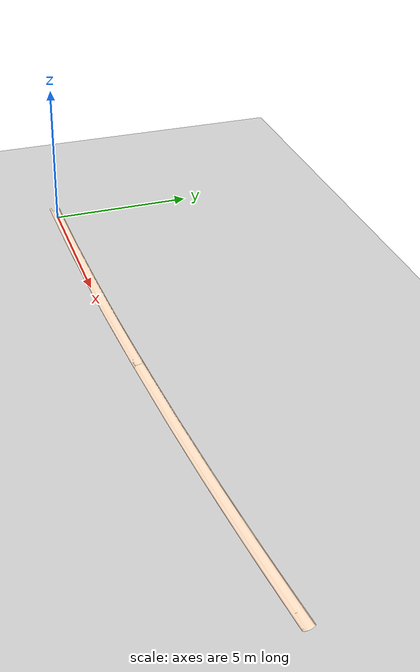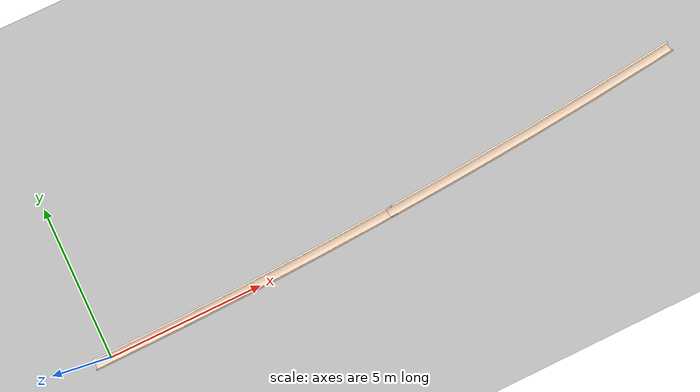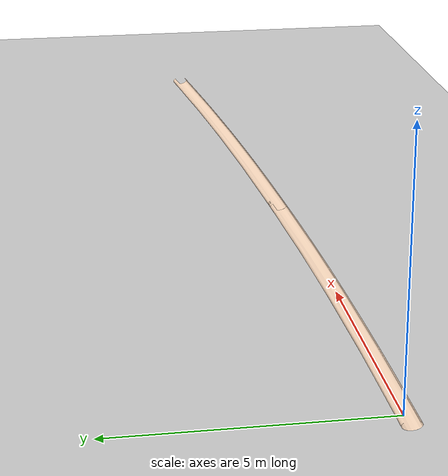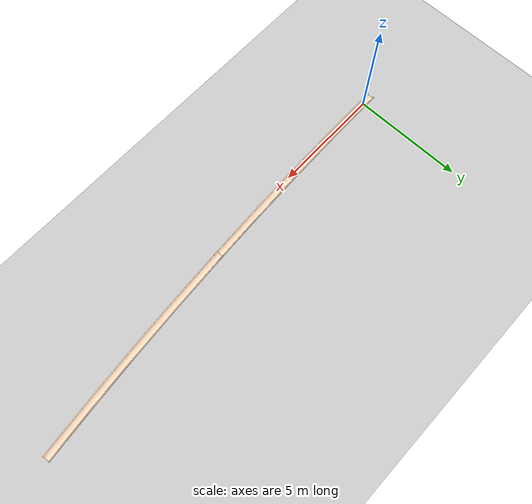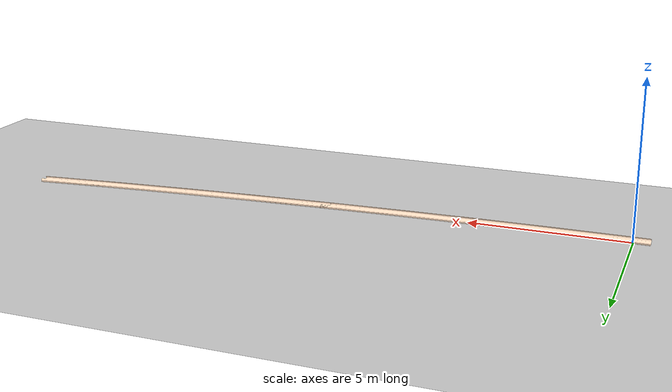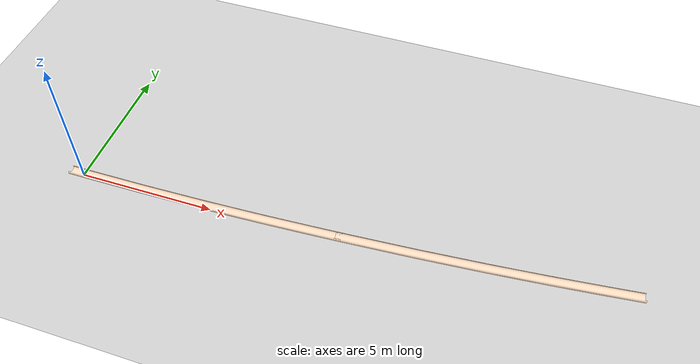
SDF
<?xml version="1.0"?>
<sdf version="1.4">
  <world name="default">
    <include>
      <uri>model://ground_plane</uri>
    </include>
    <include>
      <uri>model://sun</uri>
    </include>
	<include>
      <uri>model://dipole_chamber</uri>
	  <name>chamber_1</name>
	  <pose>0.0 0 0 0 0 0</pose>
    </include>
	<include>
      <uri>model://dipole_chamber</uri>
	  <name>chamber_2</name>
	  <pose>10.0 0.315 0 0 0 0.058</pose>
    </include>

  </world>
</sdf>

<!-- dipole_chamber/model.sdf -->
<sdf version='1.4'>
  <model name="dipole_chamber">
    <static>true</static>

      <link name='modul1'>

        <collision name='modul1_collision'>
          <pose>0.0 0 0.1 0 3.1415 -1.570796</pose>
          <geometry>
            <mesh>
              <uri>model://dipole_chamber/meshes/dipole.dae</uri>
              <scale>0.003 0.003 0.003</scale>
            </mesh>
          </geometry>
        </collision>

        <visual name='modul1_visual'>
          <pose>0.0 0 0.1 0 3.1415 -1.570796</pose>
          <geometry>
            <mesh>
              <uri>model://dipole_chamber/meshes/dipole.dae</uri>
              <scale>0.003 0.003 0.003</scale>
            </mesh>
          </geometry>
        </visual>
      </link>

  </model>
</sdf>
